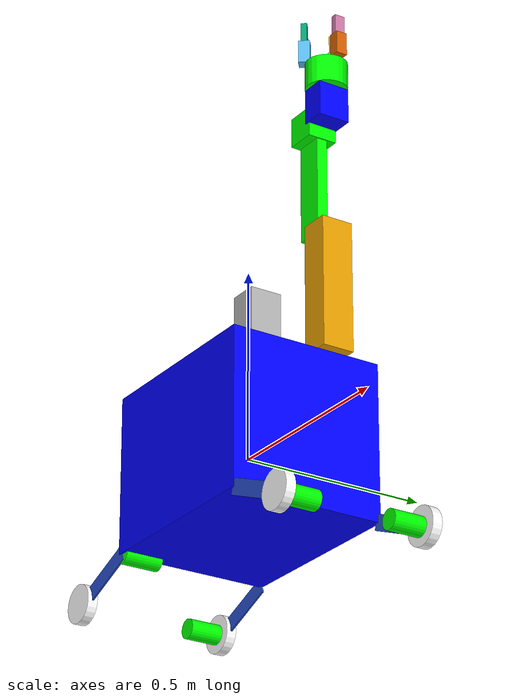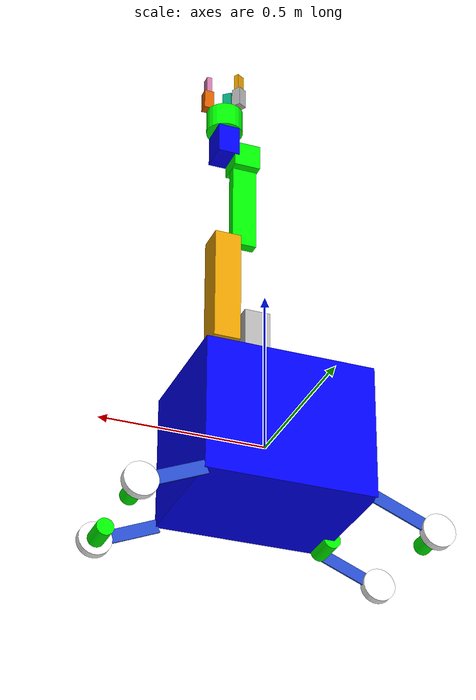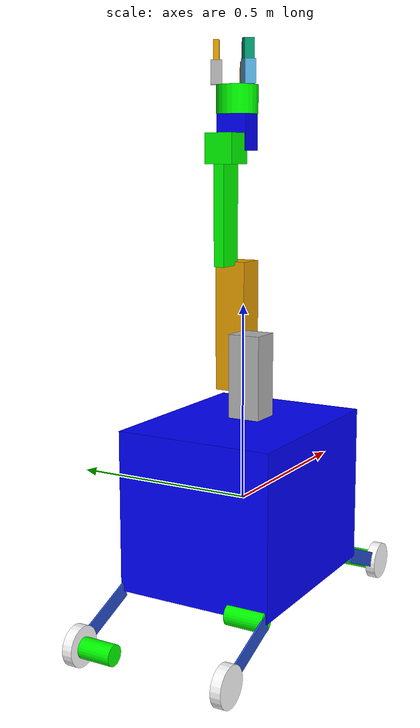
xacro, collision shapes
<?xml version="1.0"?>

<robot name="gazebo_M.A.R.S_prototype" xmlns:xacro="http://www.ros.org/wiki/xacro">
<!--WHEELS-->
<xacro:property name="radius" value="0.05"/>
<xacro:property name="length" value="0.026"/>

<!--motors-->
<xacro:property name="radius_of_motor" value="0.026"/>
<xacro:property name="length_of_motor" value="0.10"/>

<!--MATERIAL COLORS -->
  <material name="blue">
    <color rgba="0 0 1 1"/>
  </material>

<material name="red">
    <color rgba="1 0 0 1"/>
  </material>

<material name="pink">
    <color rgba="0.8 0 1 0.5"/>
  </material>

    <material name="white">
    <color rgba="1 1 1 1"/>
  </material>

  <material name="green">
    <color rgba="0 1 0 1"/>
</material>

<gazebo reference="base_link">
  <material>Gazebo/orange</material>
</gazebo>

<!--/////////////////////// MACROS FOR GAZEBO TRANSMISSION TAGS AND ROS CONTROL PLUGIN ///////////////////////////////////////////////-->
 <!-- plugin -->

 <xacro:macro name="transmission_block" params="joint_name">
	    <transmission name="joint_tranmission">
	    <type>transmission_interface/SimpleTransmission</type>
	    <joint name="${joint_name}">
	        <hardwareInterface>hardware_interface/PositionJointInterface</hardwareInterface>
	    </joint>
	    <actuator name="joint_motor">
	        <hardwareInterface>hardware_interface/PositionJointInterface</hardwareInterface>
	        <mechanicalReduction>1</mechanicalReduction>
	    </actuator>
	  </transmission>
   </xacro:macro>

<!-- Macros for inertia matrix calculations-->
<property name="M_PI" value="3.1415926535897931" />
 <xacro:macro name="sphere_inertial" params="radius mass">
    <inertial>
      <mass value="${mass}" />
      <origin xyz="0 0 0" />
      <inertia ixx="${0.4 * mass * radius * radius}" ixy="0.0" ixz="0.0"
        iyy="${0.4 * mass * radius * radius}" iyz="0.0"
        izz="${0.4 * mass * radius * radius}" />
    </inertial>
  </xacro:macro>

  <xacro:macro name="cylinder_inertial" params="radius length mass x y z">
    <inertial>
      <mass value="${mass}" />
      <origin xyz="${x} ${y} ${z}" />
      <inertia ixx="${0.0833333 * mass * (3 * radius * radius + length * length)}" ixy="0.0" ixz="0.0"
        iyy="${0.0833333 * mass * (3 * radius * radius + length * length)}" iyz="0.0"
        izz="${0.5 * mass * radius * radius}" />
    </inertial>
  </xacro:macro>

<!--Visual of the Link-->
  <link name="base_link">         <!--chassis link-->
    <visual>

    <geometry>

        <box size="0.5 0.40 0.40"/>
       </geometry>
  <!-- Setting up the origin of the link -->
      <origin rpy="0 0 0" xyz="0 0 0"/>
       <material name="blue"/>
    </visual>
<!--  COLLISION -->
    <collision>
      <geometry>
       <box size="0.51 0.41 0.41"/>

      </geometry>
      <origin rpy="0 0 0" xyz="0 0 0"/>
    </collision>
<!--  INERTIAL -->
    <inertial>
      <mass value="5.0"/>

      <inertia
          ixx="0.1333333" ixy="0.0" ixz="0.0"
          iyy="0.1708333" iyz="0.0"
          izz="0.1708333"
      />
      <origin rpy="0 0 0" xyz="0 0 0"/>
    </inertial>

  </link>

<!--HOLDER1 LEFT FRONT-->
 <link name="holder1">
 <visual>
 <origin rpy="1.57075 0 0" xyz="0.10 0 -0.0025"/>
 <geometry>
 <box size="0.2 0.04 0.005 "/>
 </geometry>
 <material name="Blue"/>
 </visual>
 <collision>
 <origin rpy="1.57075 0 0" xyz="0.10 0 -0.0025"/>
 <geometry>
 <box size="0.2 0.04 0.005 "/>
 </geometry>
 </collision>

<!-- Inertia of the HOLDER1 -->
<inertial>
      <mass value="0.09"/>

      <inertia
          ixx="0.7392092415" ixy="0.0" ixz="0.0"
          iyy="0.0003001875" iyz="0.0"
          izz="0.0003"
      />
      <origin rpy="1.57075 0 0" xyz="0.10 0 -0.0025"/>
    </inertial>
</link>

<joint name="holder1_to_base_link" type="revolute">
      <parent link="base_link"/>
      <child link="holder1"/>
      <origin xyz="0.25 0.20 -0.20" rpy="0 0 0"/>
      <axis xyz="0 1 0" />
      <limit effort="300" velocity="0.1" lower="0.52358" upper="0.261799" />
  </joint>
<!--PLANETARY MOTOR1-->
 <link name="motor1">
 <visual>
 <origin rpy="1.57075 0 0" xyz="0.10 0 0.0025"/>
 <geometry>
<cylinder radius="${radius_of_motor}" length="${length_of_motor}"/>
 </geometry>
 <material name="green"/>
 </visual>
 <collision>
 <origin rpy="1.57075 0 0" xyz="0.10 0 -0.0025"/>
 <geometry>
<cylinder radius="${radius_of_motor}" length="${length_of_motor}"/>
 </geometry>
 </collision>

<!-- Inertia of the motor1 -->
<inertial>
      <mass value="0.09"/>

      <inertia
          ixx="0.260166666667" ixy="0.0" ixz="0.0"
          iyy="0.260166666667" iyz="0.0"
          izz="0.4"
      />
      <origin rpy="1.57075 0 0" xyz="0.10 0 0.0025"/>
    </inertial>
</link>
<joint name="holder1_to_motor1" type="fixed">
      <parent link="holder1"/>
      <child link="motor1"/>
      <origin xyz="0.10 -0.05 0" rpy="0 0 0"/>
  </joint>

<!--WHEEL_1-->
<!--Visual of the Link-->
  <link name="wheel1">
    <visual>
      <geometry>
      <cylinder radius="${radius}" length="${length}"/>
      </geometry>
  <!-- Setting up the origin of the link -->
       <origin rpy="0 1.57075 1.57075" xyz="0 0.018 0"/>
        <material name="white"/>
    </visual>
     <collision>
<!--  COLLISION -->
     <origin rpy="0 1.57075 1.57075" xyz="0 0 0"/>
      <geometry>
         <cylinder radius="${radius}" length="${length}"/>
      </geometry>
    </collision>
<!--  INERTIAL -->
 <inertial>
      <origin xyz="0 0 0" rpy="0 1.5707 1.5707"/>
      <mass value="0.216"/>
      <cylinder_inertia m="0.216" r="0.05" h="0.026"/>
      <inertia
        ixx="0.000147168" ixy="0.0" ixz="0.0"
        iyy="0.000147168" iyz="0.0"
        izz="0.00027"/>
    </inertial>

  </link>

<joint name="holder1_to_wheel1" type="continuous">
  <axis xyz="0 1 0"/>
<origin rpy="0 0 0" xyz="0.20 0 0"/>
 <joint_properties damping="0.0" friction="0.0"/>
    <parent link="holder1"/>
    <child link="wheel1"/>

  </joint>

<!--HOLDER2 LEFT REAR-->
 <link name="holder2">
 <visual>
 <origin rpy="1.57075 0 0" xyz="-0.10 0 -0.0025"/>
 <geometry>
 <box size="0.2 0.04 0.005 "/>
 </geometry>
 <material name="Blue"/>
 </visual>
 <collision>
 <origin rpy="1.57075 0 0" xyz="-0.10 0 -0.0025"/>
 <geometry>
 <box size="0.2 0.04 0.005 "/>
 </geometry>
 </collision>

<!-- Inertia of the HOLDER 2 -->
<inertial>
      <mass value="0.09"/>

      <inertia
          ixx="0.7392092415" ixy="0.0" ixz="0.0"
          iyy="0.0003001875" iyz="0.0"
          izz="0.0003"
      />
      <origin rpy="1.57075 0 0" xyz="-0.10 0 -0.0025"/>
    </inertial>
</link>

<joint name="holder2_to_base_link" type="revolute">
      <parent link="base_link"/>
      <child link="holder2"/>
      <origin xyz="-0.25 0.20 -0.20" rpy="0 0 0"/>
      <axis xyz="0 1 0" />
      <limit effort="300" velocity="0.1" lower="-0.52358" upper="-0.261799" />
  </joint>

<!--PLANETARY MOTOR2-->
 <link name="motor2">
 <visual>
 <origin rpy="1.57075 0 0" xyz="-0.10 0 0.0025"/>
 <geometry>
<cylinder radius="${radius_of_motor}" length="${length_of_motor}"/>
 </geometry>
 <material name="green"/>
 </visual>
 <collision>
 <origin rpy="1.57075 0 0" xyz="-0.10 0 -0.0025"/>
 <geometry>
<cylinder radius="${radius_of_motor}" length="${length_of_motor}"/>
 </geometry>
 </collision>

<!-- Inertia of the motor2 -->
<inertial>
      <mass value="0.09"/>

      <inertia
          ixx="0.260166666667" ixy="0.0" ixz="0.0"
          iyy="0.260166666667" iyz="0.0"
          izz="0.4"
      />
      <origin rpy="1.57075 0 0" xyz="-0.10 0 0.0025"/>
    </inertial>
</link>
<joint name="holder2_to_motor2" type="fixed">
      <parent link="holder2"/>
      <child link="motor2"/>
      <origin xyz="-0.10 -0.05 0" rpy="0 0 0"/>
  </joint>

<!--WHEEL_2-->
<!--Visual of the Link-->
  <link name="wheel2">
    <visual>
      <geometry>
      <cylinder radius="${radius}" length="${length}"/>
      </geometry>
  <!-- Setting up the origin of the link -->
       <origin rpy="0 1.57075 1.57075" xyz="0 0.018 0"/>
        <material name="white"/>
    </visual>
     <collision>
<!--  COLLISION -->
     <origin rpy="0 1.57075 1.57075" xyz="0 0 0"/>
      <geometry>
         <cylinder radius="${radius}" length="${length}"/>
      </geometry>
    </collision>
<!--  INERTIAL -->
 <inertial>
      <origin xyz="0 0 0" rpy="0 1.5707 1.5707"/>
      <mass value="0.216"/>
      <cylinder_inertia m="0.216" r="0.05" h="0.026"/>
      <inertia
        ixx="0.000147168" ixy="0.0" ixz="0.0"
        iyy="0.000147168" iyz="0.0"
        izz="0.00027"/>
    </inertial>

  </link>

<joint name="holder2_to_wheel2" type="continuous">
  <axis xyz="0 1 0"/>
<origin rpy="0 0 0" xyz="-0.20 0 0"/>
 <joint_properties damping="0.0" friction="0.0"/>
    <parent link="holder2"/>
    <child link="wheel2"/>

  </joint>
<!--HOLDER3 LEFT FRONT-->
 <link name="holder3">
 <visual>
 <origin rpy="1.57075 0 0" xyz="0.10 0 -0.0025"/>
 <geometry>
 <box size="0.2 0.04 0.005 "/>
 </geometry>
 <material name="Blue"/>
 </visual>
 <collision>
 <origin rpy="1.57075 0 0" xyz="0.10 0 -0.0025"/>
 <geometry>
 <box size="0.2 0.04 0.005 "/>
 </geometry>
 </collision>

<!-- Inertia of the HOLDER3 -->
<inertial>
      <mass value="0.09"/>

      <inertia
          ixx="0.7392092415" ixy="0.0" ixz="0.0"
          iyy="0.0003001875" iyz="0.0"
          izz="0.0003"
      />
      <origin rpy="1.57075 0 0" xyz="0.10 0 -0.0025"/>
    </inertial>
</link>

<joint name="holder3_to_base_link" type="revolute">
      <parent link="base_link"/>
      <child link="holder3"/>
      <origin xyz="0.25 -0.20 -0.20" rpy="0 0 0"/>
      <axis xyz="0 1 0" />
      <limit effort="300" velocity="0.1" lower="0.52358" upper="0.261799" />
  </joint>
<!--PLANETARY MOTOR3-->
 <link name="motor3">
 <visual>
 <origin rpy="1.57075 0 0" xyz="0.10 0 0.0025"/>
 <geometry>
<cylinder radius="${radius_of_motor}" length="${length_of_motor}"/>
 </geometry>
 <material name="green"/>
 </visual>
 <collision>
 <origin rpy="1.57075 0 0" xyz="0.10 0 -0.0025"/>
 <geometry>
<cylinder radius="${radius_of_motor}" length="${length_of_motor}"/>
 </geometry>
 </collision>

<!-- Inertia of the motor3 -->
<inertial>
      <mass value="0.09"/>

      <inertia
          ixx="0.260166666667" ixy="0.0" ixz="0.0"
          iyy="0.260166666667" iyz="0.0"
          izz="0.4"
      />
      <origin rpy="1.57075 0 0" xyz="0.10 0 0.0025"/>
    </inertial>
</link>
<joint name="holder3_to_motor3" type="fixed">
      <parent link="holder3"/>
      <child link="motor3"/>
      <origin xyz="0.10 0.05 0" rpy="0 0 0"/>
  </joint>

<!--WHEEL_3-->
<!--Visual of the Link-->
  <link name="wheel3">
    <visual>
      <geometry>
      <cylinder radius="${radius}" length="${length}"/>
      </geometry>
  <!-- Setting up the origin of the link -->
       <origin rpy="0 1.57075 1.57075" xyz="0 -0.018 0"/>
        <material name="white"/>
    </visual>
     <collision>
<!--  COLLISION -->
     <origin rpy="0 1.57075 1.57075" xyz="0 0 0"/>
      <geometry>
         <cylinder radius="${radius}" length="${length}"/>
      </geometry>
    </collision>
<!--  INERTIAL -->
 <inertial>
      <origin xyz="0 0 0" rpy="0 1.5707 1.5707"/>
      <mass value="0.216"/>
      <cylinder_inertia m="0.216" r="0.05" h="0.026"/>
      <inertia
        ixx="0.000147168" ixy="0.0" ixz="0.0"
        iyy="0.000147168" iyz="0.0"
        izz="0.00027"/>
    </inertial>

  </link>

<joint name="holder3_to_wheel3" type="continuous">
  <axis xyz="0 1 0"/>
<origin rpy="0 0 0" xyz="0.20 0 0"/>
 <joint_properties damping="0.0" friction="0.0"/>
    <parent link="holder3"/>
    <child link="wheel3"/>

  </joint>

<!--HOLDER4 LEFT FRONT-->
 <link name="holder4">
 <visual>
 <origin rpy="1.57075 0 0" xyz="-0.10 0 -0.0025"/>
 <geometry>
 <box size="0.2 0.04 0.005 "/>
 </geometry>
 <material name="Blue"/>
 </visual>
 <collision>
 <origin rpy="1.57075 0 0" xyz="-0.10 0 -0.0025"/>
 <geometry>
 <box size="0.2 0.04 0.005 "/>
 </geometry>
 </collision>

<!-- Inertia of the HOLDER4 -->
<inertial>
      <mass value="0.09"/>

      <inertia
          ixx="0.7392092415" ixy="0.0" ixz="0.0"
          iyy="0.0003001875" iyz="0.0"
          izz="0.0003"
      />
      <origin rpy="1.57075 0 0" xyz="-0.10 0 -0.0025"/>
    </inertial>
</link>

<joint name="holder4_to_base_link" type="revolute">
      <parent link="base_link"/>
      <child link="holder4"/>
      <origin xyz="-0.25 -0.20 -0.20" rpy="0 0 0"/>
      <axis xyz="0 1 0" />
      <limit effort="300" velocity="0.1" lower="-0.52358" upper="-0.261799" />
  </joint>
<!--PLANETARY MOTOR4-->
 <link name="motor4">
 <visual>
 <origin rpy="1.57075 0 0" xyz="-0.10 0 0.0025"/>
 <geometry>
<cylinder radius="${radius_of_motor}" length="${length_of_motor}"/>
 </geometry>
 <material name="green"/>
 </visual>
 <collision>
 <origin rpy="1.57075 0 0" xyz="0.10 0 -0.0025"/>
 <geometry>
<cylinder radius="${radius_of_motor}" length="${length_of_motor}"/>
 </geometry>
 </collision>

<!-- Inertia of the motor4 -->
<inertial>
      <mass value="0.09"/>

      <inertia
          ixx="0.260166666667" ixy="0.0" ixz="0.0"
          iyy="0.260166666667" iyz="0.0"
          izz="0.4"
      />
      <origin rpy="1.57075 0 0" xyz="-0.10 0 0.0025"/>
    </inertial>
</link>
<joint name="holder4_to_motor4" type="fixed">
      <parent link="holder4"/>
      <child link="motor4"/>
      <origin xyz="-0.10 0.05 0" rpy="0 0 0"/>
  </joint>

<!--WHEEL_4-->
<!--Visual of the Link-->
  <link name="wheel4">
    <visual>
      <geometry>
      <cylinder radius="${radius}" length="${length}"/>
      </geometry>
  <!-- Setting up the origin of the link -->
       <origin rpy="0 1.57075 1.57075" xyz="0 -0.018 0"/>
        <material name="white"/>
    </visual>
     <collision>
<!--  COLLISION -->
     <origin rpy="0 1.57075 1.57075" xyz="0 0 0"/>
      <geometry>
         <cylinder radius="${radius}" length="${length}"/>
      </geometry>
    </collision>
<!--  INERTIAL -->
 <inertial>
      <origin xyz="0 0 0" rpy="0 1.5707 1.5707"/>
      <mass value="0.216"/>
      <cylinder_inertia m="0.216" r="0.05" h="0.026"/>
      <inertia
        ixx="0.000147168" ixy="0.0" ixz="0.0"
        iyy="0.000147168" iyz="0.0"
        izz="0.00027"/>
    </inertial>

  </link>

<joint name="holder4_to_wheel4" type="continuous">
  <axis xyz="0 1 0"/>
<origin rpy="0 0 0" xyz="-0.20 0 0"/>
 <joint_properties damping="0.0" friction="0.0"/>
    <parent link="holder4"/>
    <child link="wheel4"/>

  </joint>

  <link name="kinect">

    <visual>
      <geometry>
        <mesh filename="package://learning_urdf_simulations/meshes/kinect.dae"/>
       </geometry>
      <origin rpy="0 0 0" xyz="0 0 0"/>

    </visual>
    </link>

     <joint name="base_link_to_kinect" type="fixed">
  <axis xyz="0 0 0"/>
<origin rpy="0 0 1.5707" xyz="0.135 0 0.08"/>

    <parent link="base_link"/>
    <child link="kinect"/>

  </joint>

  <link name="imu">
  <visual>
      <geometry>
        <box size="0.05 0.04 0.02"/>
       </geometry>
      <origin rpy="0 0 0" xyz="0 0 0"/>
    </visual>
    </link>
<joint name="base_link_to_imu" type="fixed">
  <axis xyz="0 0 0"/>
<origin rpy="0 0 1.5707" xyz="0 0 0"/>

    <parent link="base_link"/>
    <child link="imu"/>

  </joint>

<!-- GAZEBO PHYSICAL PROPERTIES-->
 <gazebo reference="base_link_to_wheel1">
      <mu1 value="200.0"/>
      <mu2 value="100.0"/>
      <kp value="10000000.0" />
      <kd value="1.0" />
      <material>Gazebo/Grey</material>
    </gazebo>
<gazebo reference="base_link_to_wheel2">
      <mu1 value="200.0"/>
      <mu2 value="100.0"/>
      <kp value="10000000.0" />
      <kd value="1.0" />
      <material>Gazebo/Grey</material>
    </gazebo>
    <gazebo reference="base_link_to_wheel3">
      <mu1 value="200.0"/>
      <mu2 value="100.0"/>
      <kp value="10000000.0" />
      <kd value="1.0" />
      <material>Gazebo/Grey</material>
    </gazebo>
    <gazebo reference="base_link_to_wheel4">
      <mu1 value="200.0"/>
      <mu2 value="100.0"/>
      <kp value="10000000.0" />
      <kd value="1.0" />
      <material>Gazebo/Grey</material>
    </gazebo>

<!-- wheel 1 transmission tag-->

<transmission name="base_to_wheel1">
  <type>transmission_interface/SimpleTransmission</type>
  <actuator name="motor1">
  <mechanicalReduction>1</mechanicalReduction>
     <hardwareInterface>EffortJointInterface</hardwareInterface>

</actuator>
<joint name="base_link_to_wheel1">
   <hardwareInterface>hardware_interface/VelocityJointInterface</hardwareInterface>
</joint>
</transmission>

<!-- wheel 2 transmission tag-->

<transmission name="base_to_wheel2">
  <type>transmission_interface/SimpleTransmission</type>
  <actuator name="motor2">
  <mechanicalReduction>1</mechanicalReduction>
 <hardwareInterface>EffortJointInterface</hardwareInterface>

</actuator>
<joint name="base_link_to_wheel2">
   <hardwareInterface>hardware_interface/VelocityJointInterface</hardwareInterface>
</joint>
</transmission>

<!-- wheel 3 transmission tag-->

<transmission name="base_to_wheel3">
  <type>transmission_interface/SimpleTransmission</type>
  <actuator name="motor3">
  <mechanicalReduction>1</mechanicalReduction>
   <hardwareInterface>EffortJointInterface</hardwareInterface>

</actuator>
<joint name="base_link_to_wheel3">
   <hardwareInterface>hardware_interface/VelocityJointInterface</hardwareInterface>
</joint>
</transmission>

<!-- wheel 4 transmission tag-->

<transmission name="base_to_wheel4">
  <type>transmission_interface/SimpleTransmission</type>
  <actuator name="motor4">
  <mechanicalReduction>1</mechanicalReduction>
   <hardwareInterface>EffortJointInterface</hardwareInterface>

</actuator>
<joint name="base_link_to_wheel4">
   <hardwareInterface>hardware_interface/VelocityJointInterface</hardwareInterface>
</joint>
</transmission>

 <!-- camera -->
  <gazebo reference="camera_link">
    <sensor type="depth" name="camera1">
        <always_on>1</always_on>
        <visualize>true</visualize>
        <camera>
            <horizontal_fov>1.047</horizontal_fov>
            <image>
                <width>640</width>
                <height>480</height>
                <format>R8G8B8</format>
            </image>
            <depth_camera>

            </depth_camera>
            <clip>
                <near>0.1</near>
                <far>100</far>
            </clip>
        </camera>
             <plugin name="camera_controller" filename="libgazebo_ros_openni_kinect.so">
             <alwaysOn>true</alwaysOn>
                <updateRate>10.0</updateRate>
                <cameraName>camera</cameraName>
                <frameName>camera_link</frameName>
            <imageTopicName>rgb/image_raw</imageTopicName>
            <depthImageTopicName>depth/image_raw</depthImageTopicName>
            <pointCloudTopicName>depth/points</pointCloudTopicName>
            <cameraInfoTopicName>rgb/camera_info</cameraInfoTopicName>
            <depthImageCameraInfoTopicName>depth/camera_info</depthImageCameraInfoTopicName>
            <pointCloudCutoff>0.4</pointCloudCutoff>
                <hackBaseline>0.07</hackBaseline>
                <distortionK1>0.0</distortionK1>
                <distortionK2>0.0</distortionK2>
                <distortionK3>0.0</distortionK3>
                <distortionT1>0.0</distortionT1>
                <distortionT2>0.0</distortionT2>
            <CxPrime>0.0</CxPrime>
            <Cx>0.0</Cx>
            <Cy>0.0</Cy>
            <focalLength>0.0</focalLength>
            </plugin>
    </sensor>
  </gazebo>

<!-- MANIPULATOR-->
<!-- BASE-->
<link name="base_box">
    <visual>
        <geometry>
        <box size="0.33 0.34 0.093"/>
        </geometry>
        <origin rpy="0 0 0" xyz="0 0 0"/>
    </visual>

    <collision>
        <geometry>
        <box size="0.35 0.086 0.0795"/>
        </geometry>
        <origin rpy="0 1.57075 0" xyz="0 0 0"/>
    </collision>
    <!-- PHYSICAL PROPERTIES -->
    <xacro:cylinder_inertial mass="3" length="0.20" radius="0.09" x="0" y="0" z="0.10"/>
</link>

    <joint name="base_link_to_base_box" type="revolute">
    <parent link="base_link"/>
    <child link="base_box"/>
    <origin rpy="0 0 0" xyz="0.04 0 0.2465"/>
    <axis xyz="0 0 1"/>
    <limit effort="36" velocity="1" lower="-3.14" upper="3.14"/>
    <dynamics damping="50" friction="1"/>
    </joint>
<!-- LINK 2 -->
<link name="link_2">
    <visual>
        <geometry>
        <box size="0.34 0.086 0.0795"/>
        </geometry>
        <origin rpy="0 1.57075 0" xyz="0.028 0 0.17"/>
    </visual>

    <collision>
        <geometry>
        <box size="0.35 0.086 0.0795"/>
        </geometry>
        <origin rpy="0 1.57075 0" xyz="0.028 0 0.17"/>
    </collision>

    <!-- PHYSICAL PROPERTIES -->

    <inertial>
    <mass value="3"/>
    <inertia ixx="0.030749" ixy="0.0" ixz="0.0" iyy="0.0304800625" iyz="0.0" izz="0.0034290625"/>
    <origin rpy="0 0 0" xyz="0 0 0.17"/>
    </inertial>

</link>

    <joint name="base_box_to_link2" type="revolute">
    <parent link="base_box"/>
    <child link="link_2"/>
    <origin rpy="0 0 0" xyz="0.11 0.118 0"/>
    <axis xyz="1 0 0"/>
    <limit effort="25" velocity="0.2094" lower="-1.57" upper="1.57"/>
    <dynamics damping="50" friction="1"/>
    </joint>
<!-- LINK 3 -->
<link name="link_3">
    <visual>
        <geometry>
        <box size="0.265 0.03 0.04"/>
        </geometry>
        <origin rpy="0 1.57075 0" xyz="-0.032 0 0.1325"/>
        <material name="green"/>
    </visual>

    <collision>
        <geometry>
        <box size="0.275 0.03 0.074"/>
        </geometry>
        <origin rpy="0 1.57075 0" xyz="-0.032 0 0.1325"/>
    </collision>

    <!-- PHYSICAL PROPERTIES -->

    <inertial>
    <mass value="0.120"/>
    <inertia ixx="0.00071125" ixy="0.0" ixz="0.0" iyy="0.00071825" iyz="0.0" izz="2.5e-05"/>
    <origin rpy="0 1.57075 0" xyz="-0.032 0 0"/>
    </inertial>

</link>

    <joint name="link_2_to_link_3" type="revolute">
    <parent link="link_2"/>
    <child link="link_3"/>
    <origin rpy="0 0 0" xyz="0 0 0.34"/>
    <axis xyz="1 0 0"/>
    <limit effort="15" velocity="5.2359" lower="-1.57" upper="1.57"/>
    <dynamics damping="50" friction="1"/>
    </joint>

<!-- MOTOR NO 4 -->
    <link name="motor_4">
    <visual>
        <geometry>
        <box size="0.07 0.07 0.07"/>
        </geometry>
        <origin rpy="0 0 0" xyz="-0.032 0 0"/>
        <material name="green"/>
    </visual>

    <collision>
        <geometry>
        <box size="0.08 0.08 0.08"/>
        </geometry>
        <origin rpy="0 1.57075 0" xyz="-0.032 0 0"/>
    </collision>

    <inertial>
    <mass value="0.624"/>
    <inertia ixx="0.0005096" ixy="0.0" ixz="0.0" iyy="0.0005096" iyz="0.0" izz="0.0005096"/>
    </inertial>
    </link>

    <joint name="motor_4_to_link_3" type="fixed">
    <parent link="link_3"/>
    <child link="motor_4"/>
    <origin rpy="0 0 0" xyz="0 0 0.30"/>
    </joint>

<!-- LINK 4 -->
<link name="link_4">
    <visual>
        <geometry>
        <box size="0.09 0.0763 0.056"/>
        </geometry>
        <origin rpy="0 1.57075 0" xyz="0.028 0 0.045"/>
        <material name="blue"/>
    </visual>

    <collision>
        <geometry>
        <box size="0.10 0.0863 0.066"/>
        </geometry>
        <origin rpy="0 1.57075 0" xyz="0.028 0 0.045"/>
    </collision>

    <!-- PHYSICAL PROPERTIES -->

    <inertial>
    <mass value="0.674"/>
    <inertia ixx="0.00050312" ixy="0.0" ixz="0.0" iyy="0.00063108" iyz="0.0" izz="0.00078193"/>
    <origin rpy="0 1.57075 0" xyz="0.028 0 0.045"/>
    </inertial>

</link>

    <joint name="link_3_to_link_4" type="revolute">
    <parent link="motor_4"/>
    <child link="link_4"/>
    <origin rpy="0 0 0" xyz="0 0 0"/>
    <axis xyz="1 0 0"/>
    <limit effort="5" velocity="3.14" lower="-1.57" upper="1.57"/>
    <dynamics damping="50" friction="1"/>
    </joint>
<!-- GRIPPER BASE -->
<link name="gripper_base">
    <visual>
    <geometry>
    <cylinder length="0.07425" radius="0.055"/>
    </geometry>
    <origin rpy="0 0 0" xyz="0 0 0.037125"/>
    <material name="green"/>
    </visual>

    <collision>
    <geometry>
    <cylinder length="0.07425" radius="0.055"/>
    </geometry>
    <origin rpy="0 0 0" xyz="0 0 0.037125"/>
    </collision>

    <!-- PHYSICAL PROPERTIES -->

    <xacro:cylinder_inertial radius="0.055" length="0.07425" mass="0.3" x="0" y="0" z="0.03712"/>

</link>

    <joint name="link_4_to_gripper_base" type="revolute">
    <parent link="link_4"/>
    <child link="gripper_base"/>
    <origin rpy="0 0 0" xyz="0.028 0 0.09"/>
    <axis xyz="0 0 1"/>
    <limit effort="5" velocity="3.14" lower="-3.14" upper="3.14"/>
    <dynamics damping="50" friction="1"/>
    </joint>

<link name="finger_base1">
    <visual>
        <geometry>
        <box size="0.062 0.03 0.03"/>
        </geometry>
        <origin rpy="0 1.57075 0" xyz="0 0 0.031"/>
    </visual>

    <collision>
        <geometry>
        <box size="0.062 0.03 0.03"/>
        </geometry>
        <origin rpy="0 1.57075 0" xyz="0 0 0.031"/>
    </collision>

    <!-- PHYSICAL PROPERTIES -->

    <inertial>
    <mass value="0.025"/>
    <inertia ixx="9.8833333e-06" ixy="0.0" ixz="0.0" iyy="9.88333333333e-06" iyz="0.0" izz="3.75e-06"/>
    <origin rpy="0 0 0" xyz="0 0 0.031"/>
    </inertial>

</link>

    <joint name="gripper_base_to_finger_base1" type="revolute">
    <parent link="gripper_base"/>
    <child link="finger_base1"/>
    <origin rpy="0 0 0" xyz="0.055 0 0.07425"/>
    <axis xyz="0 1 0"/>
    <limit effort="30" velocity="1" lower="-0.0349066" upper="0.750492"/>
    <dynamics damping="50" friction="1"/>
    </joint>

<link name="finger_top1">
    <visual>
        <geometry>
        <box size="0.052 0.028 0.016"/>
        </geometry>
        <origin rpy="0 1.57075 0" xyz="0 0 0.026"/>
    </visual>

    <collision>
        <geometry>
        <box size="0.052 0.028 0.016"/>
        </geometry>
        <origin rpy="0 1.57075 0" xyz="0 0 0.026"/>
    </collision>

    <!-- PHYSICAL PROPERTIES -->

    <inertial>
    <mass value="0.025"/>
    <inertia ixx="7.26666666667e-06" ixy="0.0" ixz="0.0" iyy="6.16666666667e-06" iyz="0.0" izz="2.16666666667e-06"/>
    <origin rpy="0 0 0" xyz="0 0 0.026"/>
    </inertial>
</link>

    <joint name="finger_base1_to_finger_top1" type="revolute">
    <parent link="finger_base1"/>
    <child link="finger_top1"/>
    <origin rpy="0 0 0" xyz="0 0 0.062"/>
    <axis xyz="0 1 0"/>
    <limit effort="30" velocity="1" lower="-0.785398" upper="0"/>
    <dynamics damping="50" friction="1"/>
    </joint>
<link name="finger_base2">
    <visual>
        <geometry>
        <box size="0.062 0.03 0.03"/>
        </geometry>
        <origin rpy="0 1.57075 0" xyz="0 0 0.031"/>
    </visual>

    <collision>
        <geometry>
        <box size="0.062 0.03 0.03"/>
        </geometry>
        <origin rpy="0 1.57075 0" xyz="0 0 0.031"/>
    </collision>

    <!-- PHYSICAL PROPERTIES -->

  <inertial>
    <mass value="0.025"/>
    <inertia ixx="9.88333333333e-06" ixy="0.0" ixz="0.0" iyy="9.88333333333e-06" iyz="0.0" izz="3.75e-06"/>
    <origin rpy="0 0 0" xyz="0 0 0.031"/>
    </inertial>
</link>

    <joint name="gripper_base_to_finger_base2" type="revolute">
    <parent link="gripper_base"/>
    <child link="finger_base2"/>
    <origin rpy="0 0 2.0944" xyz=" -0.0275 0.047631 0.07425"/>
    <axis xyz="0 1 0"/>
    <limit effort="30" velocity="1" lower="-0.750492" upper="0.0349066"/>
    <dynamics damping="50" friction="1"/>
    </joint>

<link name="finger_top2">
    <visual>
        <geometry>
        <box size="0.052 0.028 0.016"/>
        </geometry>
        <origin rpy="0 1.57075 0" xyz="0 0 0.026"/>
    </visual>

    <collision>
        <geometry>
        <box size="0.052 0.028 0.016"/>
        </geometry>
        <origin rpy="0 1.57075 0" xyz="0 0 0.026"/>
    </collision>

    <!-- PHYSICAL PROPERTIES -->

   <inertial>
    <mass value="0.025"/>
    <inertia ixx="7.26666666667e-06" ixy="0.0" ixz="0.0" iyy="6.16666666667e-06" iyz="0.0" izz="2.16666666667e-06"/>
    <origin rpy="0 0 0" xyz="0 0 0.026"/>
    </inertial>
</link>

    <joint name="finger_base2_to_finger_top2" type="revolute">
    <parent link="finger_base2"/>
    <child link="finger_top2"/>
    <origin rpy="0 0 0" xyz="0 0 0.062"/>
    <axis xyz="0 1 0"/>
    <limit effort="30" velocity="1" lower="0" upper="-0.785398"/>
    <dynamics damping="50" friction="1"/>
    </joint>
<link name="finger_base3">
    <visual>
        <geometry>
        <box size="0.062 0.03 0.03"/>
        </geometry>
        <origin rpy="0 1.57075 0" xyz="0 0 0.031"/>
    </visual>

    <collision>
        <geometry>
        <box size="0.062 0.03 0.03"/>
        </geometry>
        <origin rpy="0 1.57075 0" xyz="0 0 0.031"/>
    </collision>

    <!-- PHYSICAL PROPERTIES -->

  <inertial>
    <mass value="0.025"/>
    <inertia ixx="9.88333333333e-06" ixy="0.0" ixz="0.0" iyy="9.88333333333e-06" iyz="0.0" izz="3.75e-06"/>
    <origin rpy="0 0 0" xyz="0 0 0.031"/>
    </inertial>
</link>

    <joint name="gripper_base_to_finger_base3" type="revolute">
    <parent link="gripper_base"/>
    <child link="finger_base3"/>
    <origin rpy="0 0 0.872665" xyz=" -0.0275 -0.047631 0.07425"/>
    <axis xyz="0 1 0"/>
    <limit effort="30" velocity="1" lower="-0.0349066" upper="0.750492"/>
    <dynamics damping="50" friction="1"/>
    </joint>

<link name="finger_top3">
    <visual>
        <geometry>
        <box size="0.052 0.028 0.016"/>
        </geometry>
        <origin rpy="0 1.57075 0" xyz="0 0 0.026"/>
    </visual>

    <collision>
        <geometry>
        <box size="0.052 0.028 0.016"/>
        </geometry>
        <origin rpy="0 1.57075 0" xyz="0 0 0.026"/>
    </collision>

    <!-- PHYSICAL PROPERTIES -->

   <inertial>
    <mass value="0.025"/>
    <inertia ixx="7.26666666667e-06" ixy="0.0" ixz="0.0" iyy="6.16666666667e-06" iyz="0.0" izz="2.16666666667e-06"/>
    <origin rpy="0 0 0" xyz="0 0 0.026"/>
    </inertial>
</link>

    <joint name="finger_base3_to_finger_top3" type="revolute">
    <parent link="finger_base3"/>
    <child link="finger_top3"/>
    <origin rpy="0 0 0" xyz="0 0 0.062"/>
    <axis xyz="0 1 0"/>
    <limit effort="30" velocity="1" lower="0" upper="0.785398"/>
    <dynamics damping="50" friction="1"/>
    </joint>

<!--///////////////// TRANSMISSION TAGS FOR GAZEBO /////////////////////////////////-->
  <gazebo>
      <plugin name="gazebo_ros_control" filename="libgazebo_ros_control.so">
      <robotNamespace>/gazebo_MARS_prototype</robotNamespace>
      </plugin>
  </gazebo>

    <xacro:transmission_block joint_name="base_link_to_base_box"/>
    <xacro:transmission_block joint_name="base_box_to_link2"/>
    <xacro:transmission_block joint_name="link_2_to_link_3"/>
    <xacro:transmission_block joint_name="link_3_to_link_4"/>
    <xacro:transmission_block joint_name="link_4_to_gripper_base"/>

<!-- wheel 1 transmission tag-->

<transmission name="base_to_wheel1">
  <type>transmission_interface/SimpleTransmission</type>
  <actuator name="motor1">
  <mechanicalReduction>1</mechanicalReduction>
     <hardwareInterface>EffortJointInterface</hardwareInterface>

</actuator>
<joint name="base_link_to_wheel1">
   <hardwareInterface>hardware_interface/VelocityJointInterface</hardwareInterface>
</joint>
</transmission>

<!-- wheel 2 transmission tag-->

<transmission name="base_to_wheel2">
  <type>transmission_interface/SimpleTransmission</type>
  <actuator name="motor2">
  <mechanicalReduction>1</mechanicalReduction>
 <hardwareInterface>EffortJointInterface</hardwareInterface>

</actuator>
<joint name="base_link_to_wheel2">
   <hardwareInterface>hardware_interface/VelocityJointInterface</hardwareInterface>
</joint>
</transmission>

<!-- wheel 3 transmission tag-->

<transmission name="base_to_wheel3">
  <type>transmission_interface/SimpleTransmission</type>
  <actuator name="motor3">
  <mechanicalReduction>1</mechanicalReduction>
   <hardwareInterface>EffortJointInterface</hardwareInterface>

</actuator>
<joint name="base_link_to_wheel3">
   <hardwareInterface>hardware_interface/VelocityJointInterface</hardwareInterface>
</joint>
</transmission>

<!-- wheel 4 transmission tag-->

<transmission name="base_to_wheel4">
  <type>transmission_interface/SimpleTransmission</type>
  <actuator name="motor4">
  <mechanicalReduction>1</mechanicalReduction>
   <hardwareInterface>EffortJointInterface</hardwareInterface>

</actuator>
<joint name="base_link_to_wheel4">
   <hardwareInterface>hardware_interface/VelocityJointInterface</hardwareInterface>
</joint>
</transmission>

</robot>
